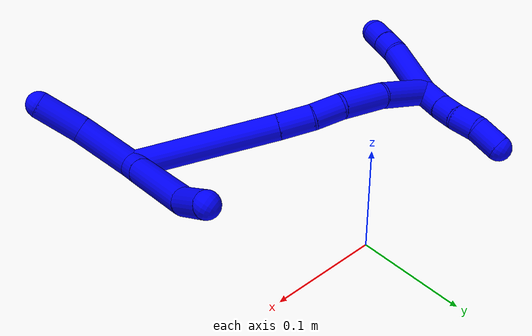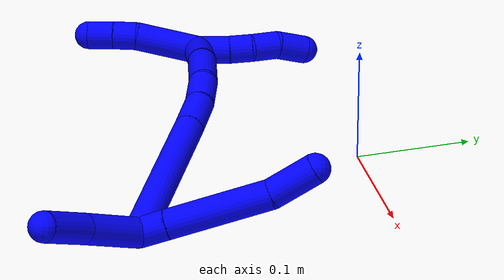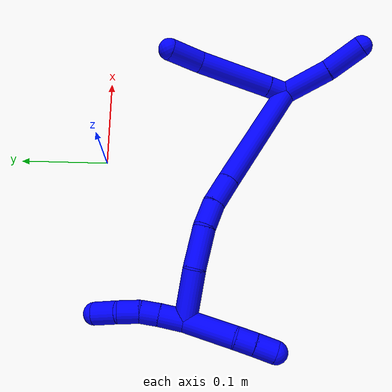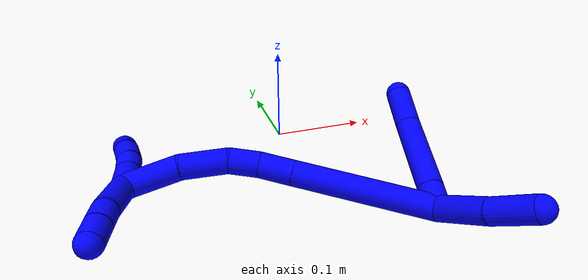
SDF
<sdf version="1.7">
 <world name="default">
  <model name="1">
   <static>0</static>
   <link name="1">
    <collision name="collision-cylinder-e_1_2_8">
     <pose>0.007391 0.004945 0.00764 -0.574427 0.682151 -0.208926</pose>
     <geometry><cylinder><radius>0.0125</radius><length>0.023447</length></cylinder></geometry>
     <surface>
      <friction><ode><mu>1.16</mu><mu2>1.16</mu2><slip1>0</slip1><slip2>0</slip2></ode></friction>
      <contact><ode><kp>1e+06</kp><kd>1</kd><max_vel>0</max_vel><min_depth>0.001</min_depth></ode></contact>
     </surface>
    </collision>
    <visual name="visual-cylinder-e_1_2_8">
     <pose>0.007391 0.004945 0.00764 -0.574427 0.682151 -0.208926</pose>
     <geometry><cylinder><radius>0.0125</radius><length>0.023447</length></cylinder></geometry>
     <material><ambient>0 0 1 1</ambient></material>
    </visual>
    <collision name="collision-cylinder-e_2_8_9">
     <pose>0.0416 0.02739 0.044245 -0.543504 0.670098 -0.19343</pose>
     <geometry><cylinder><radius>0.0125</radius><length>0.086359</length></cylinder></geometry>
     <surface>
      <friction><ode><mu>1.16</mu><mu2>1.16</mu2><slip1>0</slip1><slip2>0</slip2></ode></friction>
      <contact><ode><kp>1e+06</kp><kd>1</kd><max_vel>0</max_vel><min_depth>0.001</min_depth></ode></contact>
     </surface>
    </collision>
    <visual name="visual-cylinder-e_2_8_9">
     <pose>0.0416 0.02739 0.044245 -0.543504 0.670098 -0.19343</pose>
     <geometry><cylinder><radius>0.0125</radius><length>0.086359</length></cylinder></geometry>
     <material><ambient>0 0 1 1</ambient></material>
    </visual>
    <collision name="collision-cylinder-e_3_9_6">
     <pose>0.084303 0.050337 0.084251 -0.458203 0.911553 -0.227636</pose>
     <geometry><cylinder><radius>0.0125</radius><length>0.040194</length></cylinder></geometry>
     <surface>
      <friction><ode><mu>1.16</mu><mu2>1.16</mu2><slip1>0</slip1><slip2>0</slip2></ode></friction>
      <contact><ode><kp>1e+06</kp><kd>1</kd><max_vel>0</max_vel><min_depth>0.001</min_depth></ode></contact>
     </surface>
    </collision>
    <visual name="visual-cylinder-e_3_9_6">
     <pose>0.084303 0.050337 0.084251 -0.458203 0.911553 -0.227636</pose>
     <geometry><cylinder><radius>0.0125</radius><length>0.040194</length></cylinder></geometry>
     <material><ambient>0 0 1 1</ambient></material>
    </visual>
    <collision name="collision-cylinder-e_1_2_10">
     <pose>0.002635 0.001187 -0.027849 -3.09898 0.094259 -2.29291</pose>
     <geometry><cylinder><radius>0.0125</radius><length>0.055996</length></cylinder></geometry>
     <surface>
      <friction><ode><mu>1.16</mu><mu2>1.16</mu2><slip1>0</slip1><slip2>0</slip2></ode></friction>
      <contact><ode><kp>1e+06</kp><kd>1</kd><max_vel>0</max_vel><min_depth>0.001</min_depth></ode></contact>
     </surface>
    </collision>
    <visual name="visual-cylinder-e_1_2_10">
     <pose>0.002635 0.001187 -0.027849 -3.09898 0.094259 -2.29291</pose>
     <geometry><cylinder><radius>0.0125</radius><length>0.055996</length></cylinder></geometry>
     <material><ambient>0 0 1 1</ambient></material>
    </visual>
    <collision name="collision-cylinder-e_2_10_5">
     <pose>0.008669 0.005983 -0.077133 -2.97483 0.155094 -1.498</pose>
     <geometry><cylinder><radius>0.0125</radius><length>0.044004</length></cylinder></geometry>
     <surface>
      <friction><ode><mu>1.16</mu><mu2>1.16</mu2><slip1>0</slip1><slip2>0</slip2></ode></friction>
      <contact><ode><kp>1e+06</kp><kd>1</kd><max_vel>0</max_vel><min_depth>0.001</min_depth></ode></contact>
     </surface>
    </collision>
    <visual name="visual-cylinder-e_2_10_5">
     <pose>0.008669 0.005983 -0.077133 -2.97483 0.155094 -1.498</pose>
     <geometry><cylinder><radius>0.0125</radius><length>0.044004</length></cylinder></geometry>
     <material><ambient>0 0 1 1</ambient></material>
    </visual>
    <collision name="collision-cylinder-e_1_2_11">
     <pose>0.020803 -0.047211 0.044728 0.8124 0.30959 0.134034</pose>
     <geometry><cylinder><radius>0.0125</radius><length>0.136561</length></cylinder></geometry>
     <surface>
      <friction><ode><mu>1.16</mu><mu2>1.16</mu2><slip1>0</slip1><slip2>0</slip2></ode></friction>
      <contact><ode><kp>1e+06</kp><kd>1</kd><max_vel>0</max_vel><min_depth>0.001</min_depth></ode></contact>
     </surface>
    </collision>
    <visual name="visual-cylinder-e_1_2_11">
     <pose>0.020803 -0.047211 0.044728 0.8124 0.30959 0.134034</pose>
     <geometry><cylinder><radius>0.0125</radius><length>0.136561</length></cylinder></geometry>
     <material><ambient>0 0 1 1</ambient></material>
    </visual>
    <collision name="collision-cylinder-e_2_11_12">
     <pose>0.046755 -0.105989 0.099918 0.835525 0.318904 0.142529</pose>
     <geometry><cylinder><radius>0.0125</radius><length>0.032849</length></cylinder></geometry>
     <surface>
      <friction><ode><mu>1.16</mu><mu2>1.16</mu2><slip1>0</slip1><slip2>0</slip2></ode></friction>
      <contact><ode><kp>1e+06</kp><kd>1</kd><max_vel>0</max_vel><min_depth>0.001</min_depth></ode></contact>
     </surface>
    </collision>
    <visual name="visual-cylinder-e_2_11_12">
     <pose>0.046755 -0.105989 0.099918 0.835525 0.318904 0.142529</pose>
     <geometry><cylinder><radius>0.0125</radius><length>0.032849</length></cylinder></geometry>
     <material><ambient>0 0 1 1</ambient></material>
    </visual>
    <collision name="collision-cylinder-e_3_12_13">
     <pose>0.055265 -0.129375 0.118173 0.987818 0.233039 0.125877</pose>
     <geometry><cylinder><radius>0.0125</radius><length>0.029102</length></cylinder></geometry>
     <surface>
      <friction><ode><mu>1.16</mu><mu2>1.16</mu2><slip1>0</slip1><slip2>0</slip2></ode></friction>
      <contact><ode><kp>1e+06</kp><kd>1</kd><max_vel>0</max_vel><min_depth>0.001</min_depth></ode></contact>
     </surface>
    </collision>
    <visual name="visual-cylinder-e_3_12_13">
     <pose>0.055265 -0.129375 0.118173 0.987818 0.233039 0.125877</pose>
     <geometry><cylinder><radius>0.0125</radius><length>0.029102</length></cylinder></geometry>
     <material><ambient>0 0 1 1</ambient></material>
    </visual>
    <collision name="collision-cylinder-e_4_13_14">
     <pose>0.058005 -0.160602 0.137751 1.02513 -0.027318 -0.015374</pose>
     <geometry><cylinder><radius>0.0125</radius><length>0.045427</length></cylinder></geometry>
     <surface>
      <friction><ode><mu>1.16</mu><mu2>1.16</mu2><slip1>0</slip1><slip2>0</slip2></ode></friction>
      <contact><ode><kp>1e+06</kp><kd>1</kd><max_vel>0</max_vel><min_depth>0.001</min_depth></ode></contact>
     </surface>
    </collision>
    <visual name="visual-cylinder-e_4_13_14">
     <pose>0.058005 -0.160602 0.137751 1.02513 -0.027318 -0.015374</pose>
     <geometry><cylinder><radius>0.0125</radius><length>0.045427</length></cylinder></geometry>
     <material><ambient>0 0 1 1</ambient></material>
    </visual>
    <collision name="collision-cylinder-e_5_14_1">
     <pose>0.050612 -0.20288 0.164259 0.998751 -0.244032 -0.133583</pose>
     <geometry><cylinder><radius>0.0125</radius><length>0.056061</length></cylinder></geometry>
     <surface>
      <friction><ode><mu>1.16</mu><mu2>1.16</mu2><slip1>0</slip1><slip2>0</slip2></ode></friction>
      <contact><ode><kp>1e+06</kp><kd>1</kd><max_vel>0</max_vel><min_depth>0.001</min_depth></ode></contact>
     </surface>
    </collision>
    <visual name="visual-cylinder-e_5_14_1">
     <pose>0.050612 -0.20288 0.164259 0.998751 -0.244032 -0.133583</pose>
     <geometry><cylinder><radius>0.0125</radius><length>0.056061</length></cylinder></geometry>
     <material><ambient>0 0 1 1</ambient></material>
    </visual>
    <collision name="collision-cylinder-e_1_1_15">
     <pose>0.03979 -0.241938 0.156144 2.52501 -0.143635 -0.444368</pose>
     <geometry><cylinder><radius>0.0125</radius><length>0.056574</length></cylinder></geometry>
     <surface>
      <friction><ode><mu>1.16</mu><mu2>1.16</mu2><slip1>0</slip1><slip2>0</slip2></ode></friction>
      <contact><ode><kp>1e+06</kp><kd>1</kd><max_vel>0</max_vel><min_depth>0.001</min_depth></ode></contact>
     </surface>
    </collision>
    <visual name="visual-cylinder-e_1_1_15">
     <pose>0.03979 -0.241938 0.156144 2.52501 -0.143635 -0.444368</pose>
     <geometry><cylinder><radius>0.0125</radius><length>0.056574</length></cylinder></geometry>
     <material><ambient>0 0 1 1</ambient></material>
    </visual>
    <collision name="collision-cylinder-e_2_15_16">
     <pose>0.032204 -0.263897 0.125484 2.50578 -0.349082 -0.983856</pose>
     <geometry><cylinder><radius>0.0125</radius><length>0.020683</length></cylinder></geometry>
     <surface>
      <friction><ode><mu>1.16</mu><mu2>1.16</mu2><slip1>0</slip1><slip2>0</slip2></ode></friction>
      <contact><ode><kp>1e+06</kp><kd>1</kd><max_vel>0</max_vel><min_depth>0.001</min_depth></ode></contact>
     </surface>
    </collision>
    <visual name="visual-cylinder-e_2_15_16">
     <pose>0.032204 -0.263897 0.125484 2.50578 -0.349082 -0.983856</pose>
     <geometry><cylinder><radius>0.0125</radius><length>0.020683</length></cylinder></geometry>
     <material><ambient>0 0 1 1</ambient></material>
    </visual>
    <collision name="collision-cylinder-e_3_16_4">
     <pose>0.024316 -0.276102 0.109359 2.48255 -0.392548 -1.05327</pose>
     <geometry><cylinder><radius>0.0125</radius><length>0.022743</length></cylinder></geometry>
     <surface>
      <friction><ode><mu>1.16</mu><mu2>1.16</mu2><slip1>0</slip1><slip2>0</slip2></ode></friction>
      <contact><ode><kp>1e+06</kp><kd>1</kd><max_vel>0</max_vel><min_depth>0.001</min_depth></ode></contact>
     </surface>
    </collision>
    <visual name="visual-cylinder-e_3_16_4">
     <pose>0.024316 -0.276102 0.109359 2.48255 -0.392548 -1.05327</pose>
     <geometry><cylinder><radius>0.0125</radius><length>0.022743</length></cylinder></geometry>
     <material><ambient>0 0 1 1</ambient></material>
    </visual>
    <collision name="collision-cylinder-e_1_1_17">
     <pose>0.048612 -0.219135 0.19062 -0.516925 0.342518 -0.091386</pose>
     <geometry><cylinder><radius>0.0125</radius><length>0.02842</length></cylinder></geometry>
     <surface>
      <friction><ode><mu>1.16</mu><mu2>1.16</mu2><slip1>0</slip1><slip2>0</slip2></ode></friction>
      <contact><ode><kp>1e+06</kp><kd>1</kd><max_vel>0</max_vel><min_depth>0.001</min_depth></ode></contact>
     </surface>
    </collision>
    <visual name="visual-cylinder-e_1_1_17">
     <pose>0.048612 -0.219135 0.19062 -0.516925 0.342518 -0.091386</pose>
     <geometry><cylinder><radius>0.0125</radius><length>0.02842</length></cylinder></geometry>
     <material><ambient>0 0 1 1</ambient></material>
    </visual>
    <collision name="collision-cylinder-e_2_17_18">
     <pose>0.05742 -0.208354 0.210811 -0.453171 0.401194 -0.093686</pose>
     <geometry><cylinder><radius>0.0125</radius><length>0.020671</length></cylinder></geometry>
     <surface>
      <friction><ode><mu>1.16</mu><mu2>1.16</mu2><slip1>0</slip1><slip2>0</slip2></ode></friction>
      <contact><ode><kp>1e+06</kp><kd>1</kd><max_vel>0</max_vel><min_depth>0.001</min_depth></ode></contact>
     </surface>
    </collision>
    <visual name="visual-cylinder-e_2_17_18">
     <pose>0.05742 -0.208354 0.210811 -0.453171 0.401194 -0.093686</pose>
     <geometry><cylinder><radius>0.0125</radius><length>0.020671</length></cylinder></geometry>
     <material><ambient>0 0 1 1</ambient></material>
    </visual>
    <collision name="collision-cylinder-e_3_18_19">
     <pose>0.065453 -0.201369 0.230258 -0.253276 0.341291 -0.043873</pose>
     <geometry><cylinder><radius>0.0125</radius><length>0.023881</length></cylinder></geometry>
     <surface>
      <friction><ode><mu>1.16</mu><mu2>1.16</mu2><slip1>0</slip1><slip2>0</slip2></ode></friction>
      <contact><ode><kp>1e+06</kp><kd>1</kd><max_vel>0</max_vel><min_depth>0.001</min_depth></ode></contact>
     </surface>
    </collision>
    <visual name="visual-cylinder-e_3_18_19">
     <pose>0.065453 -0.201369 0.230258 -0.253276 0.341291 -0.043873</pose>
     <geometry><cylinder><radius>0.0125</radius><length>0.023881</length></cylinder></geometry>
     <material><ambient>0 0 1 1</ambient></material>
    </visual>
    <collision name="collision-cylinder-e_4_19_3">
     <pose>0.070052 -0.195003 0.254177 -0.265841 0.044552 -0.005958</pose>
     <geometry><cylinder><radius>0.0125</radius><length>0.027028</length></cylinder></geometry>
     <surface>
      <friction><ode><mu>1.16</mu><mu2>1.16</mu2><slip1>0</slip1><slip2>0</slip2></ode></friction>
      <contact><ode><kp>1e+06</kp><kd>1</kd><max_vel>0</max_vel><min_depth>0.001</min_depth></ode></contact>
     </surface>
    </collision>
    <visual name="visual-cylinder-e_4_19_3">
     <pose>0.070052 -0.195003 0.254177 -0.265841 0.044552 -0.005958</pose>
     <geometry><cylinder><radius>0.0125</radius><length>0.027028</length></cylinder></geometry>
     <material><ambient>0 0 1 1</ambient></material>
    </visual>
    <collision name="collision-sphere-3">
     <pose>0.070653 -0.191456 0.267203 0 -0 0</pose>
     <geometry><sphere><radius>0.0125</radius></sphere></geometry>
     <surface>
      <friction><ode><mu>1.16</mu><mu2>1.16</mu2><slip1>0</slip1><slip2>0</slip2></ode></friction>
      <contact><ode><kp>1e+06</kp><kd>1</kd><max_vel>0</max_vel><min_depth>0.001</min_depth></ode></contact>
     </surface>
    </collision>
    <visual name="visual-sphere-3">
     <pose>0.070653 -0.191456 0.267203 0 -0 0</pose>
     <geometry><sphere><radius>0.0125</radius></sphere></geometry>
     <material><ambient>0 0 1 1</ambient></material>
    </visual>
    <collision name="collision-sphere-19">
     <pose>0.06945 -0.198549 0.241151 0 -0 0</pose>
     <geometry><sphere><radius>0.0125</radius></sphere></geometry>
     <surface>
      <friction><ode><mu>1.16</mu><mu2>1.16</mu2><slip1>0</slip1><slip2>0</slip2></ode></friction>
      <contact><ode><kp>1e+06</kp><kd>1</kd><max_vel>0</max_vel><min_depth>0.001</min_depth></ode></contact>
     </surface>
    </collision>
    <visual name="visual-sphere-19">
     <pose>0.06945 -0.198549 0.241151 0 -0 0</pose>
     <geometry><sphere><radius>0.0125</radius></sphere></geometry>
     <material><ambient>0 0 1 1</ambient></material>
    </visual>
    <collision name="collision-sphere-5">
     <pose>0.012068 0.009591 -0.09857 0 -0 0</pose>
     <geometry><sphere><radius>0.0125</radius></sphere></geometry>
     <surface>
      <friction><ode><mu>1.16</mu><mu2>1.16</mu2><slip1>0</slip1><slip2>0</slip2></ode></friction>
      <contact><ode><kp>1e+06</kp><kd>1</kd><max_vel>0</max_vel><min_depth>0.001</min_depth></ode></contact>
     </surface>
    </collision>
    <visual name="visual-sphere-5">
     <pose>0.012068 0.009591 -0.09857 0 -0 0</pose>
     <geometry><sphere><radius>0.0125</radius></sphere></geometry>
     <material><ambient>0 0 1 1</ambient></material>
    </visual>
    <collision name="collision-sphere-10">
     <pose>0.00527 0.002375 -0.055697 0 -0 0</pose>
     <geometry><sphere><radius>0.0125</radius></sphere></geometry>
     <surface>
      <friction><ode><mu>1.16</mu><mu2>1.16</mu2><slip1>0</slip1><slip2>0</slip2></ode></friction>
      <contact><ode><kp>1e+06</kp><kd>1</kd><max_vel>0</max_vel><min_depth>0.001</min_depth></ode></contact>
     </surface>
    </collision>
    <visual name="visual-sphere-10">
     <pose>0.00527 0.002375 -0.055697 0 -0 0</pose>
     <geometry><sphere><radius>0.0125</radius></sphere></geometry>
     <material><ambient>0 0 1 1</ambient></material>
    </visual>
    <collision name="collision-sphere-6">
     <pose>0.100188 0.055782 0.095291 0 -0 0</pose>
     <geometry><sphere><radius>0.0125</radius></sphere></geometry>
     <surface>
      <friction><ode><mu>1.16</mu><mu2>1.16</mu2><slip1>0</slip1><slip2>0</slip2></ode></friction>
      <contact><ode><kp>1e+06</kp><kd>1</kd><max_vel>0</max_vel><min_depth>0.001</min_depth></ode></contact>
     </surface>
    </collision>
    <visual name="visual-sphere-6">
     <pose>0.100188 0.055782 0.095291 0 -0 0</pose>
     <geometry><sphere><radius>0.0125</radius></sphere></geometry>
     <material><ambient>0 0 1 1</ambient></material>
    </visual>
    <collision name="collision-sphere-9">
     <pose>0.068417 0.044891 0.073211 0 -0 0</pose>
     <geometry><sphere><radius>0.0125</radius></sphere></geometry>
     <surface>
      <friction><ode><mu>1.16</mu><mu2>1.16</mu2><slip1>0</slip1><slip2>0</slip2></ode></friction>
      <contact><ode><kp>1e+06</kp><kd>1</kd><max_vel>0</max_vel><min_depth>0.001</min_depth></ode></contact>
     </surface>
    </collision>
    <visual name="visual-sphere-9">
     <pose>0.068417 0.044891 0.073211 0 -0 0</pose>
     <geometry><sphere><radius>0.0125</radius></sphere></geometry>
     <material><ambient>0 0 1 1</ambient></material>
    </visual>
    <collision name="collision-sphere-2">
     <geometry><sphere><radius>0.0125</radius></sphere></geometry>
     <surface>
      <friction><ode><mu>1.16</mu><mu2>1.16</mu2><slip1>0</slip1><slip2>0</slip2></ode></friction>
      <contact><ode><kp>1e+06</kp><kd>1</kd><max_vel>0</max_vel><min_depth>0.001</min_depth></ode></contact>
     </surface>
    </collision>
    <visual name="visual-sphere-2">
     <geometry><sphere><radius>0.0125</radius></sphere></geometry>
     <material><ambient>0 0 1 1</ambient></material>
    </visual>
    <collision name="collision-sphere-8">
     <pose>0.014783 0.009889 0.015279 0 -0 0</pose>
     <geometry><sphere><radius>0.0125</radius></sphere></geometry>
     <surface>
      <friction><ode><mu>1.16</mu><mu2>1.16</mu2><slip1>0</slip1><slip2>0</slip2></ode></friction>
      <contact><ode><kp>1e+06</kp><kd>1</kd><max_vel>0</max_vel><min_depth>0.001</min_depth></ode></contact>
     </surface>
    </collision>
    <visual name="visual-sphere-8">
     <pose>0.014783 0.009889 0.015279 0 -0 0</pose>
     <geometry><sphere><radius>0.0125</radius></sphere></geometry>
     <material><ambient>0 0 1 1</ambient></material>
    </visual>
    <collision name="collision-sphere-11">
     <pose>0.041606 -0.094422 0.089456 0 -0 0</pose>
     <geometry><sphere><radius>0.0125</radius></sphere></geometry>
     <surface>
      <friction><ode><mu>1.16</mu><mu2>1.16</mu2><slip1>0</slip1><slip2>0</slip2></ode></friction>
      <contact><ode><kp>1e+06</kp><kd>1</kd><max_vel>0</max_vel><min_depth>0.001</min_depth></ode></contact>
     </surface>
    </collision>
    <visual name="visual-sphere-11">
     <pose>0.041606 -0.094422 0.089456 0 -0 0</pose>
     <geometry><sphere><radius>0.0125</radius></sphere></geometry>
     <material><ambient>0 0 1 1</ambient></material>
    </visual>
    <collision name="collision-sphere-12">
     <pose>0.051905 -0.117556 0.110379 0 -0 0</pose>
     <geometry><sphere><radius>0.0125</radius></sphere></geometry>
     <surface>
      <friction><ode><mu>1.16</mu><mu2>1.16</mu2><slip1>0</slip1><slip2>0</slip2></ode></friction>
      <contact><ode><kp>1e+06</kp><kd>1</kd><max_vel>0</max_vel><min_depth>0.001</min_depth></ode></contact>
     </surface>
    </collision>
    <visual name="visual-sphere-12">
     <pose>0.051905 -0.117556 0.110379 0 -0 0</pose>
     <geometry><sphere><radius>0.0125</radius></sphere></geometry>
     <material><ambient>0 0 1 1</ambient></material>
    </visual>
    <collision name="collision-sphere-13">
     <pose>0.058625 -0.141194 0.125967 0 -0 0</pose>
     <geometry><sphere><radius>0.0125</radius></sphere></geometry>
     <surface>
      <friction><ode><mu>1.16</mu><mu2>1.16</mu2><slip1>0</slip1><slip2>0</slip2></ode></friction>
      <contact><ode><kp>1e+06</kp><kd>1</kd><max_vel>0</max_vel><min_depth>0.001</min_depth></ode></contact>
     </surface>
    </collision>
    <visual name="visual-sphere-13">
     <pose>0.058625 -0.141194 0.125967 0 -0 0</pose>
     <geometry><sphere><radius>0.0125</radius></sphere></geometry>
     <material><ambient>0 0 1 1</ambient></material>
    </visual>
    <collision name="collision-sphere-14">
     <pose>0.057384 -0.18001 0.149534 0 -0 0</pose>
     <geometry><sphere><radius>0.0125</radius></sphere></geometry>
     <surface>
      <friction><ode><mu>1.16</mu><mu2>1.16</mu2><slip1>0</slip1><slip2>0</slip2></ode></friction>
      <contact><ode><kp>1e+06</kp><kd>1</kd><max_vel>0</max_vel><min_depth>0.001</min_depth></ode></contact>
     </surface>
    </collision>
    <visual name="visual-sphere-14">
     <pose>0.057384 -0.18001 0.149534 0 -0 0</pose>
     <geometry><sphere><radius>0.0125</radius></sphere></geometry>
     <material><ambient>0 0 1 1</ambient></material>
    </visual>
    <collision name="collision-sphere-1">
     <pose>0.043839 -0.22575 0.178984 0 -0 0</pose>
     <geometry><sphere><radius>0.0125</radius></sphere></geometry>
     <surface>
      <friction><ode><mu>1.16</mu><mu2>1.16</mu2><slip1>0</slip1><slip2>0</slip2></ode></friction>
      <contact><ode><kp>1e+06</kp><kd>1</kd><max_vel>0</max_vel><min_depth>0.001</min_depth></ode></contact>
     </surface>
    </collision>
    <visual name="visual-sphere-1">
     <pose>0.043839 -0.22575 0.178984 0 -0 0</pose>
     <geometry><sphere><radius>0.0125</radius></sphere></geometry>
     <material><ambient>0 0 1 1</ambient></material>
    </visual>
    <collision name="collision-sphere-18">
     <pose>0.061457 -0.204188 0.219365 0 -0 0</pose>
     <geometry><sphere><radius>0.0125</radius></sphere></geometry>
     <surface>
      <friction><ode><mu>1.16</mu><mu2>1.16</mu2><slip1>0</slip1><slip2>0</slip2></ode></friction>
      <contact><ode><kp>1e+06</kp><kd>1</kd><max_vel>0</max_vel><min_depth>0.001</min_depth></ode></contact>
     </surface>
    </collision>
    <visual name="visual-sphere-18">
     <pose>0.061457 -0.204188 0.219365 0 -0 0</pose>
     <geometry><sphere><radius>0.0125</radius></sphere></geometry>
     <material><ambient>0 0 1 1</ambient></material>
    </visual>
    <collision name="collision-sphere-15">
     <pose>0.035741 -0.258127 0.133303 0 -0 0</pose>
     <geometry><sphere><radius>0.0125</radius></sphere></geometry>
     <surface>
      <friction><ode><mu>1.16</mu><mu2>1.16</mu2><slip1>0</slip1><slip2>0</slip2></ode></friction>
      <contact><ode><kp>1e+06</kp><kd>1</kd><max_vel>0</max_vel><min_depth>0.001</min_depth></ode></contact>
     </surface>
    </collision>
    <visual name="visual-sphere-15">
     <pose>0.035741 -0.258127 0.133303 0 -0 0</pose>
     <geometry><sphere><radius>0.0125</radius></sphere></geometry>
     <material><ambient>0 0 1 1</ambient></material>
    </visual>
    <collision name="collision-sphere-16">
     <pose>0.028666 -0.269668 0.117665 0 -0 0</pose>
     <geometry><sphere><radius>0.0125</radius></sphere></geometry>
     <surface>
      <friction><ode><mu>1.16</mu><mu2>1.16</mu2><slip1>0</slip1><slip2>0</slip2></ode></friction>
      <contact><ode><kp>1e+06</kp><kd>1</kd><max_vel>0</max_vel><min_depth>0.001</min_depth></ode></contact>
     </surface>
    </collision>
    <visual name="visual-sphere-16">
     <pose>0.028666 -0.269668 0.117665 0 -0 0</pose>
     <geometry><sphere><radius>0.0125</radius></sphere></geometry>
     <material><ambient>0 0 1 1</ambient></material>
    </visual>
    <collision name="collision-sphere-4">
     <pose>0.019966 -0.282536 0.101053 0 -0 0</pose>
     <geometry><sphere><radius>0.0125</radius></sphere></geometry>
     <surface>
      <friction><ode><mu>1.16</mu><mu2>1.16</mu2><slip1>0</slip1><slip2>0</slip2></ode></friction>
      <contact><ode><kp>1e+06</kp><kd>1</kd><max_vel>0</max_vel><min_depth>0.001</min_depth></ode></contact>
     </surface>
    </collision>
    <visual name="visual-sphere-4">
     <pose>0.019966 -0.282536 0.101053 0 -0 0</pose>
     <geometry><sphere><radius>0.0125</radius></sphere></geometry>
     <material><ambient>0 0 1 1</ambient></material>
    </visual>
    <collision name="collision-sphere-17">
     <pose>0.053384 -0.21252 0.202256 0 -0 0</pose>
     <geometry><sphere><radius>0.0125</radius></sphere></geometry>
     <surface>
      <friction><ode><mu>1.16</mu><mu2>1.16</mu2><slip1>0</slip1><slip2>0</slip2></ode></friction>
      <contact><ode><kp>1e+06</kp><kd>1</kd><max_vel>0</max_vel><min_depth>0.001</min_depth></ode></contact>
     </surface>
    </collision>
    <visual name="visual-sphere-17">
     <pose>0.053384 -0.21252 0.202256 0 -0 0</pose>
     <geometry><sphere><radius>0.0125</radius></sphere></geometry>
     <material><ambient>0 0 1 1</ambient></material>
    </visual>
    <inertial>
     <pose>0.038181 -0.098091 0.089051 0 -0 0</pose>
     <mass>0.75</mass>
     <inertia><ixx>0.0003</ixx><ixy>0</ixy><ixz>0</ixz><iyy>0.000211</iyy><iyz>0</iyz><izz>6.5e-05</izz></inertia>
    </inertial>
   </link>
   <pose>0.088303 -0.207543 0.013604 -2.76695 -1.19224 1.50683</pose>
  </model>
 </world>
</sdf>
